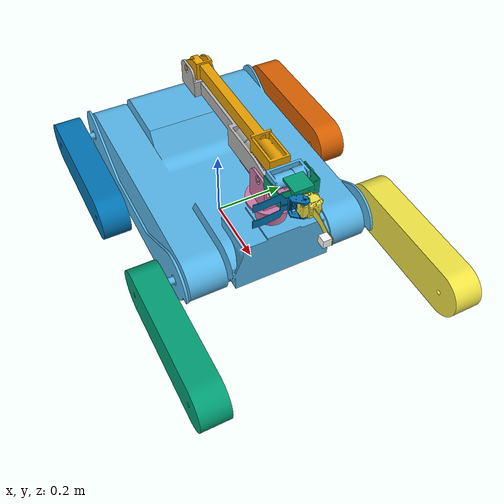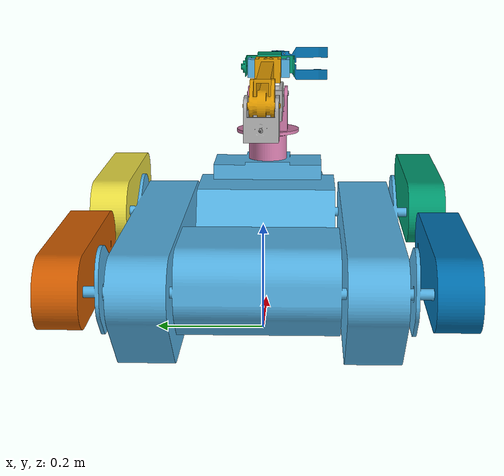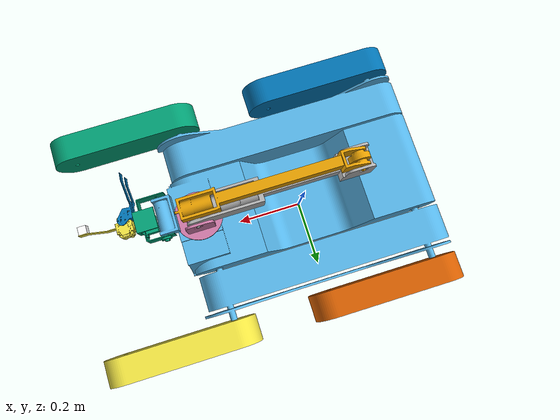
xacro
<?xml version="1.0"?>
<!-- Rojo= X, Verde=Y y Azul= Z (color de los ejes en Rviz)-->
<robot name="finder"  xmlns:xacro="http://www.ros.org/wiki/xacro">

	<!-- Macro para "mandar llamar" a las mallas *.obj -->
    <xacro:macro name="default_geometry" params="cad_dir:=package://finder_description/mallas cad_file extension:=obj">
        <geometry>
	<!-- Typically, STL/DAE/OBJ model units are in mm, but RViz units are in m, hence models must be scaled down by 1000-->
            <mesh filename="${cad_dir}/${cad_file}.${extension}" scale="0.001 0.001 0.001"/>
        </geometry>
    </xacro:macro>

	<!--General porpuse variables-->
	<xacro:property name="pi" value = "3.14159265359"/>
	<property name="deg_to_rad" value="0.01745329251994329577"/>

	<!--Inertial matrix macro-->
   	<xacro:macro name="inertial_matrix" params="mass">
    	<inertial>
      		<mass value="${mass}"/>
        	<inertia ixx="1.0" ixy="0.0" ixz="0.0" iyy="0.5" iyz="0.0" izz="1.0"/>
  		</inertial>
   </xacro:macro>

	<!--Macro para crear los eslabones y "mandar llamar" a los brazos laterales del chasis-->
	<xacro:macro name = "lateral_arms" params="name cad_name origin">
		<link name = "${name}">
			<visual>
				<xacro:default_geometry cad_file = "${cad_name}"/>
				<origin xyz= "${origin}"/>
			</visual>
		<collision>
			<xacro:default_geometry cad_file = "${cad_name}"/>
			<origin xyz= "${origin}"/>
    	</collision>
	</link>
	</xacro:macro>
	<!--Macro para crear las juntas de los brazos laterales con el chasis-->
	<xacro:macro name = "arms_joints" params="name child origin">
		<joint name = "${name}" type="revolute">
			<parent link = "traction"/>
			<child	link = "${child}"/>
			<origin xyz ="${origin}"/>
			<axis xyz = "1 0 0"/>
			<limit effort="300" velocity="0.1" lower="${-pi}" upper="${pi}"/>
		</joint>
	</xacro:macro>

	<!--parameters for geometries in collision tags-->
<!--///////////////////// shoulder collision geometry//////////////////////////////-->
	<property name="shoulder_coll_len" value="0.456" />
	<property name="shoulder_coll_width" value="0.062" />
	<property name="shoulder_coll_height" value="0.05" />
<!--///////////////////// elbow  collision geometry//////////////////////////////-->
	<property name="elbow_coll_len" value="0.393" /><!--altura en y-->
	<property name="elbow_coll_width" value="0.052" /><!--altura en x-->
	<property name="elbow_coll_height" value="0.0475" /><!--altura en z-->
<!--///////////////////// elbow  collision geometry//////////////////////////////-->
	<property name="roll_coll_len" value="0.05"/><!--altura en y-->
	<property name="roll_coll_width" value="0.087" /><!--altura en x-->
	<property name="roll_coll_height" value="0.03" /><!--altura en z-->
	<!--Cylinder parameters-->
	<property name="cylinder_len" value ="0.087"/>
	<property name="cylinder_rad" value ="0.0187"/>

	<!-- Grasping frame -->
	<property name="grasp_frame_len" value="0.02"/>
	<property name="grasp_frame_width" value="0.02"/>
	<property name="grasp_frame_height" value="0.02"/>
	<material name="White">
        <color rgba="1.0 1.0 1.0 1.0"/>
    </material>

<!--//////////////////////////  base link //////////////////-->
	<link name = "base_link"/>

	<link name = "traction">
		<visual>
			<xacro:default_geometry cad_file = "chasis"/>
			<origin xyz= "0 0 0"/>
		</visual>
		<collision>
			<xacro:default_geometry cad_file = "chasis"/>
			<origin xyz= "0 0 0"/>
    	</collision>
	</link>

	<!--Esta transformacion se hace para que los datos del SLAM correspondan a la correcta orientacion del robot-->
	<joint name = "adjustment" type="fixed">
		<parent link = "base_link"/>
		<child	link = "traction"/>
		<origin rpy="0 0 ${pi/2}"/>
	</joint>

<!--////////////////// juntas de los brazos laterales del chasis //////////////////-->
	<!-- junta del brazo frontal derecho -->
	<xacro:arms_joints name="right_front_flipper" child="right_front_arm" origin="-0.3264 -0.30255 0.1556"/>

	<!-- junta del brazo frontal izquierdo -->
	<xacro:arms_joints name="left_front_flipper" child="left_front_arm" origin="0.3264 -0.30255 0.1556"/>

	<!-- junta del brazo trasero derecho -->
	<xacro:arms_joints name="right_back_flipper" child="right_back_arm" origin="-0.3264 0.30255 0.1556"/>

	<!-- junta del brazo trasero izquierdo -->
	<xacro:arms_joints name="left_back_flipper" child="left_back_arm" origin="0.3264 0.30255 0.1556"/>

<!--////////////// brazos laterales del chasis ////////////////////-->
	<!-- brazo frontal derecho chasis -->
	<xacro:lateral_arms name="right_front_arm" cad_name="brazo_der_frontal" origin="0.3264 0.30255 -0.0629"/>

	<!-- brazo frontal izquierdo chasis -->
	<xacro:lateral_arms name="left_front_arm" cad_name="brazo_der_frontal" origin="0.3264 0.30255 -0.0629"/>

	<!-- brazo trasero derecho chasis -->
	<xacro:lateral_arms name="right_back_arm" cad_name="brazo_der_frontal" origin="0.3264 0.30255 -0.0629"/>

	<!-- brazo trasero izquierdo chasis -->
	<xacro:lateral_arms name="left_back_arm" cad_name="brazo_der_frontal" origin="0.3264 0.30255 -0.0629"/>

<!--///////////////// Brazo 6GDL + Gripper//////////////////-->

<!--////////////////// "eje tronco" rotation joint //////////////////-->
	<joint name = "base_rotation" type="revolute">
		<parent link = "traction"/>
		<child	link = "eje_tronco"/>
		<origin xyz ="0 -0.30645 ${0.2691-0.0455}" rpy="0 0 0"/>
		<axis xyz = "0 0 1"/>
		<limit effort="300" velocity="0.1" lower="${-pi}" upper="${pi}"/>
	</joint>

	<!--////////////////// "eje tronco link" //////////////////-->
	<link name = "eje_tronco">
		<visual>
			<xacro:default_geometry cad_file = "base"/>
			<origin xyz= "0 0 0"/>
		</visual>
		<collision>
			<xacro:default_geometry cad_file = "base"/>
    	</collision>
	</link>
<!--//////////////////"eje_tronco-shoulder rotation joint//////////////////-->
	<joint name = "shoulder_rotation" type = "revolute">
		<parent link = "eje_tronco"/>
		<child link = "shoulder"/>
		<origin xyz = "0 -0.0035 0.179"/>
		<axis xyz = "1 0 0"/>
		<!--limit effort="300" velocity="0.1" lower="${-pi}" upper="${pi}"/-->
		<limit effort="300" velocity="0.1" lower="0" upper="3.1"/>
	</joint>
<!--////////////////////// shoulder link //////////////////////-->
	<link name = "shoulder">
		<visual>
			<xacro:default_geometry cad_file = "hombro"/>
			<origin  xyz= "0 0.0035 -0.0338"/>
		</visual>
		<collision>
			<origin  xyz= "0 0.0035 -0.0338"/>
      		<xacro:default_geometry cad_file = "hombro"/>
		</collision>
	</link>
<!--///////////////////// "shoulder-elbow" rotation joint ////////////////////////////-->
	<joint name = "elbow_rotation" type = "revolute">
		<parent link = "shoulder"/>
		<child link = "elbow"/>
		<origin xyz = "0 0.423 0.0363"/>
		<axis xyz = "1 0 0"/>
		<!--limit effort="300" velocity="0.1" lower="${-pi}" upper="${pi}"/-->
		<limit effort="300" velocity="0.1" lower="-2.3" upper="0"/>
	</joint>

<!--////////////////////// elbow link /////////////////////////////////////-->
	<link name = "elbow">
		<visual>
			<!--origin xyz= "0 -0.4192 -0.027"/-->
			<origin xyz= "0 -0.668 -0.027"/>
			<xacro:default_geometry cad_file = "codo"/>
		</visual>
		<collision>
			<origin xyz= "0 -0.4192 -0.027"/>
			<xacro:default_geometry cad_file = "codo"/>
		</collision>
	</link>
<!--/////////////////////// roll joint ///////////////////////-->
	<joint name = "roll_rotation" type = "revolute">
		<parent link = "elbow"/>
		<child link = "roll"/>
		<origin xyz = "0 -0.4192 0.0103"/>
		<axis xyz = "0 1 0"/>
		<limit effort="300" velocity="0.1" lower="${-pi}" upper="${pi}"/>
	</joint>

<!--//////////////////// roll link ////////////////////////////////-->
	<link name = "roll">
		<visual>
			<xacro:default_geometry cad_file = "roll1"/>
			<origin xyz = "0 0 -0.0188"/>
		</visual>
		<collision>
			<origin xyz = "0 0 -0.0188" rpy = "0 0 0"/>
			<xacro:default_geometry cad_file = "roll1"/>
		</collision>
	</link>
<!--///////////////// pitch rotation joint////////////////////////////////-->
	<joint name = "pitch_rotation" type = "revolute">
		<parent link = "roll"/>
		<child link = "pitch"/>
		<origin xyz = "0 -0.0778 0"/>
		<axis xyz = "1 0 0"/>
		<!--limit effort="300" velocity="0.1" lower="${-pi}" upper="${pi}"/-->
		<limit effort="300" velocity="0.1" lower="${-deg_to_rad*60}" upper="${deg_to_rad*60}"/>
	</joint>
<!--//////////////////// pitch link ////////////////////////7-->
	<link name = "pitch">
		<visual>
			<xacro:default_geometry cad_file = "pitch_light"/>
			<!--origin xyz= "0 0.0778 -0.0188"/-->
			<origin xyz= "0 0.048 -0.0188"/>
		</visual>
		<collision>
			<xacro:default_geometry cad_file = "pitch_light"/>
			<origin xyz= "0 0.0778 -0.0188"/>
		</collision>
	</link>
	<!--////////////////////// yaw rotation joint /////////////////////////////7-->
	<joint name = "roll_rotation_2" type = "revolute">
		<parent link = "pitch"/>
		<child link = "yaw"/>
		<origin xyz = "0 -0.0835 0"/>
		<axis xyz = "0 1 0"/>
		<limit effort="300" velocity="0.1" lower="${-pi}" upper="${pi}"/>
	</joint>
<!-- ///////////////////// yaw link ///////////////////////////////-->
	<link name = "yaw">
		<visual>
			<xacro:default_geometry cad_file = "yaw"/>
			<!--origin xyz= "0.0007 0 0.00053"/-->
			<origin xyz= "0.0007 0 -0.019"/>
		</visual>
		<collision>
			<xacro:default_geometry cad_file = "yaw"/>
			<!--origin xyz= "0.0007 0 0.00053"/-->
			<origin xyz= "0.0007 0 -0.019"/>
		</collision>
	</link>
	<!--////////////////////// gripper rotation joint /////////////////////////////7-->
	<joint name = "gripper_rotation" type = "revolute">
		<parent link = "yaw"/>
		<child link = "gripper"/>
		<origin xyz = "-0.0147485 -0.003042 0"/>
		<axis xyz = "0 0 1"/>
		<!--limit effort="300" velocity="0.1" lower="${-pi}" upper="${pi}"/-->
		<limit effort="300" velocity="0.1" lower="0" upper="${pi}"/>
	</joint>
<!-- ///////////////////// gripper link ///////////////////////////////-->
	<link name = "gripper">
		<visual>
			<xacro:default_geometry cad_file = "fingers"/>
			<origin xyz= "-0.00425 0.0071 -0.035"/>
		</visual>
		<collision>
			<xacro:default_geometry cad_file = "fingers"/>
			<origin xyz= "-0.00425 0.0071 0"/>
		</collision>
	</link>

    <link name="grasping_frame">
      	<inertial>
        	<origin xyz="0 0 0" rpy="0 0 0"/>
        	<mass value="0.001"/>
        	<cuboid_inertia mass="0.0001" x="0.001" y="0.001" z="0.001"/>
        	<inertia  ixx="1.0" ixy="0.0"  ixz="0.0"  iyy="100.0"  iyz="0.0"  izz="1.0"/>
      	</inertial>
		<visual>
      		<origin xyz="0 0 0"/>
      		<geometry>
          		<box size="${grasp_frame_len} ${grasp_frame_width} ${grasp_frame_height}"/>
      		</geometry>
      		<material name="White" />
    	</visual>
    </link>
<!-- ////////////// Finger-Grasping joint///////////// -->
    <joint name="grasping_frame_joint" type="fixed">
      <parent link="yaw"/>
      <child link="grasping_frame"/>
      <origin xyz="-0.023 -0.1 0"/>
    </joint>
</robot>
